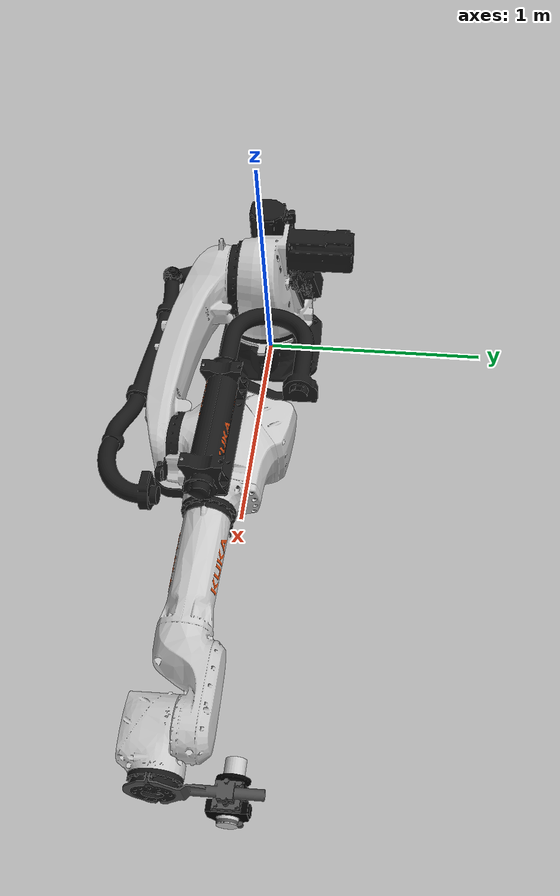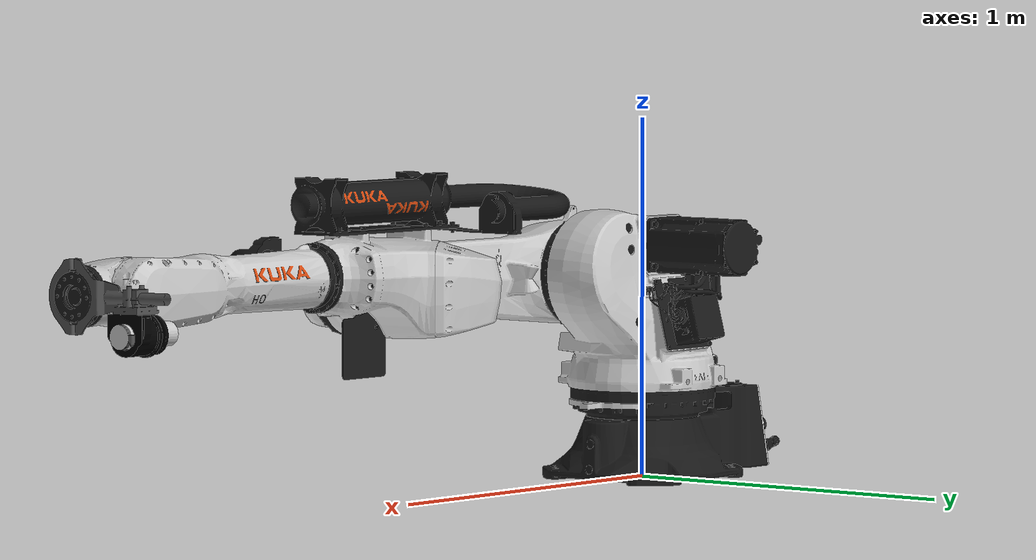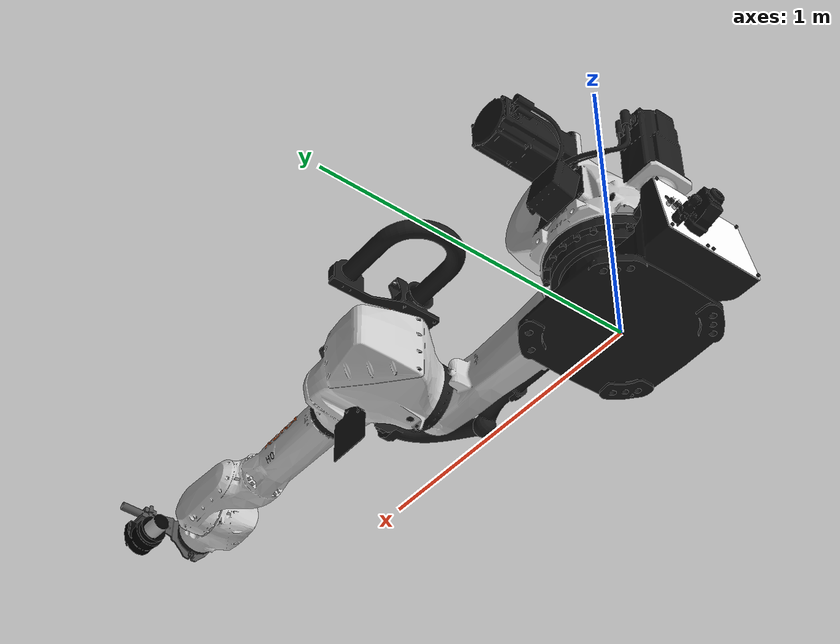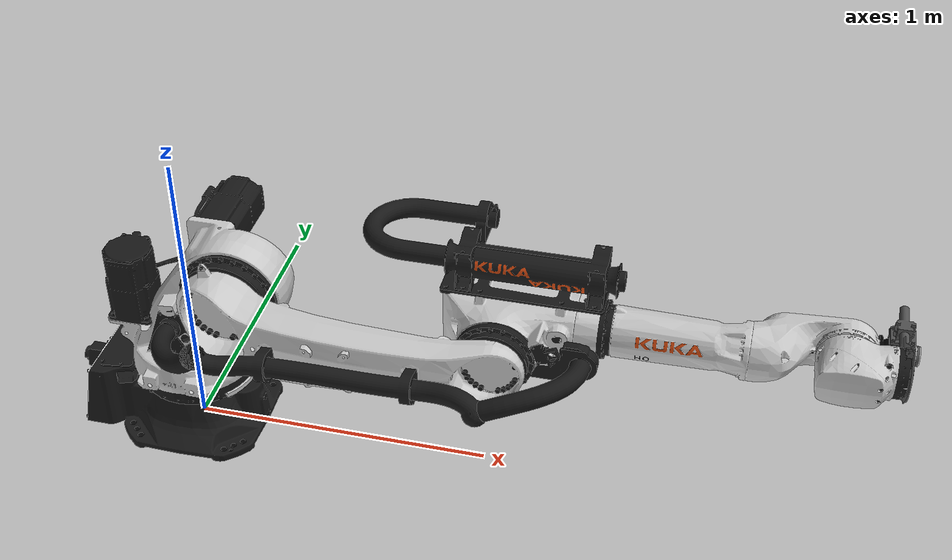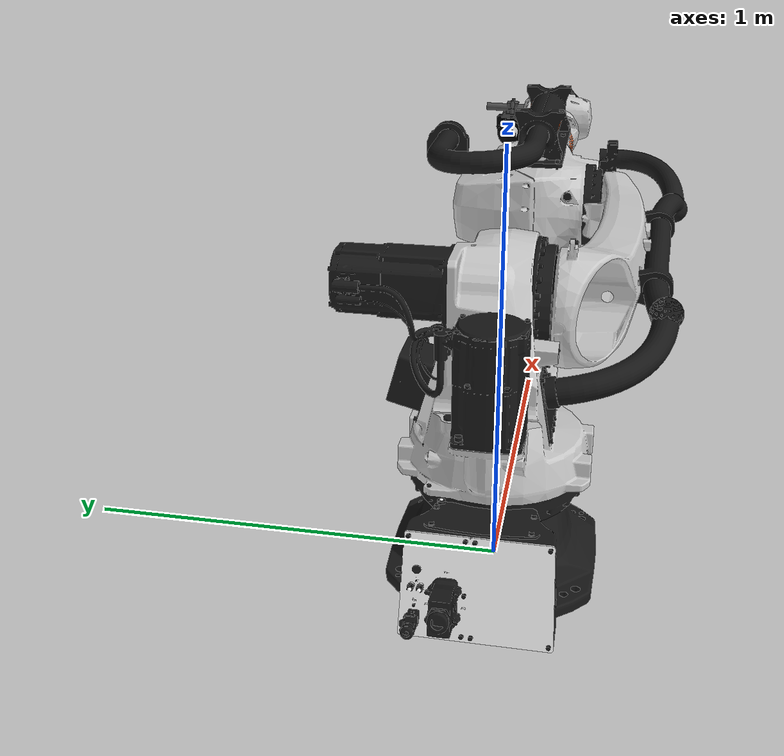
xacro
<?xml version="1.0"?>
<robot xmlns:xacro="http://www.ros.org/wiki/xacro" name="kr50_r2100">
  <!-- Import macro files  -->
  <xacro:include filename="$(find kuka_iontec_support)/urdf/kr50_r2100_macro.xacro"/>
  <xacro:include filename="$(find kuka_iontec_support)/urdf/kr_iontec_ros2_control_macro.xacro"/>
  <!-- Read additional arguments  -->
  <xacro:arg name="driver_version" default="rsi_only"/>
  <xacro:arg name="mode" default="hardware"/>
  <xacro:arg name="use_gpio" default="false"/>
  <xacro:arg name="roundtrip_time" default="0"/>
  <xacro:arg name="client_ip" default="0.0.0.0"/>
  <xacro:arg name="client_port" default="59152"/>
  <xacro:arg name="mxa_client_port" default="1337"/>
  <xacro:arg name="controller_ip" default="0.0.0.0"/>
  <xacro:arg name="verify_robot_model" default="true"/>
  <xacro:arg name="prefix" default=""/>
  <xacro:arg name="x" default="0"/>
  <xacro:arg name="y" default="0"/>
  <xacro:arg name="z" default="0"/>
  <xacro:arg name="roll" default="0"/>
  <xacro:arg name="pitch" default="0"/>
  <xacro:arg name="yaw" default="0"/>
  <xacro:arg name="gpio_config" default=""/>
  <xacro:kuka_iontec_ros2_control name="$(arg prefix)kr50_r2100" driver_version="$(arg driver_version)" client_ip="$(arg client_ip)" mxa_client_port="$(arg mxa_client_port)" controller_ip="$(arg controller_ip)" client_port="$(arg client_port)" prefix="$(arg prefix)" mode="$(arg mode)" use_gpio="$(arg use_gpio)" gpio_config="$(arg gpio_config)" roundtrip_time="$(arg roundtrip_time)" verify_robot_model="$(arg verify_robot_model)">
    <ext_axes_ros2_control_joints/>
  </xacro:kuka_iontec_ros2_control>
  <!-- world link -->
  <link name="world"/>
  <!-- robot links, joints -->
  <xacro:kuka_kr50_r2100_robot prefix="$(arg prefix)" package_name="kuka_iontec_support"/>
  <!-- default world - base_link joint -->
  <joint name="$(arg prefix)world-base_link" type="fixed">
    <parent link="world"/>
    <child link="$(arg prefix)base_link"/>
    <origin xyz="$(arg x) $(arg y) $(arg z)" rpy="$(arg roll) $(arg pitch) $(arg yaw)"/>
  </joint>
</robot>

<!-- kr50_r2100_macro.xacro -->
<robot xmlns:xacro="http://wiki.ros.org/xacro">
  <xacro:macro name="kuka_kr50_r2100_robot" params="prefix package_name link_6_es_angle:=0.0">
    <!-- links - main serial chain -->
    <link name="${prefix}base_link">
      <collision>
        <geometry>
          <mesh filename="package://${package_name}/meshes/kr50_r2100/collision/base_link.stl"/>
        </geometry>
        <origin rpy="-0.0 0.0 -0.0" xyz="0.0 0.0 0.0"/>
      </collision>
      <inertial>
        <inertia ixx="3.21771450042138" ixy="0.0" ixz="0.0" iyy="2.20944166758376" iyz="0.0" izz="3.52194780966785"/>
        <mass value="1.1102E2"/>
        <origin rpy="-0.09552224276473971 0.005165689953881887 1.5692512343174831" xyz="-0.0353407754502021 3.24880558618159E-4 0.169880117603822"/>
      </inertial>
      <visual>
        <geometry>
          <mesh filename="package://${package_name}/meshes/kr50_r2100/visual/base_link.dae"/>
        </geometry>
        <origin rpy="-0.0 0.0 -0.0" xyz="0.0 0.0 0.0"/>
      </visual>
    </link>
    <link name="${prefix}link_1">
      <collision>
        <geometry>
          <mesh filename="package://${package_name}/meshes/kr50_r2100/collision/link_1.stl"/>
        </geometry>
        <origin rpy="3.1415927 0.0 0.0" xyz="0.0 0.0 0.236000"/>
      </collision>
      <inertial>
        <inertia ixx="5.40709339054184" ixy="0.0" ixz="0.0" iyy="7.71982652844139" iyz="0.0" izz="9.08867781161129"/>
        <mass value="1.75205E2"/>
        <origin rpy="-0.7923258603339018 -0.8943966305036485 2.6984590381230245" xyz="0.0386086184755001 -0.0346095020119289 -0.237989526554607"/>
      </inertial>
      <visual>
        <geometry>
          <mesh filename="package://${package_name}/meshes/kr50_r2100/visual/link_1.dae"/>
        </geometry>
        <origin rpy="3.1415927 0.0 0.0" xyz="0.0 0.0 0.236000"/>
      </visual>
    </link>
    <link name="${prefix}link_2">
      <collision>
        <geometry>
          <mesh filename="package://${package_name}/meshes/kr50_r2100/collision/link_2.stl"/>
        </geometry>
        <origin rpy="1.5707963 0.0 1.5707963" xyz="-0.575000 -0.175000 0.054000 "/>
      </collision>
      <inertial>
        <inertia ixx="15.3115976467419" ixy="0.0" ixz="0.0" iyy="1.25648697469284" iyz="0.0" izz="15.5308363638855"/>
        <mass value="1.0886E2"/>
        <origin rpy="2.0043980356557825 -1.4175712597169723 -0.4411071139781909" xyz="0.322390685283851 0.0011177475656806899 -0.0921965092779717"/>
      </inertial>
      <visual>
        <geometry>
          <mesh filename="package://${package_name}/meshes/kr50_r2100/visual/link_2.dae"/>
        </geometry>
        <origin rpy="1.5707963 0.0 1.5707963" xyz="-0.575000 -0.175000 0.054000 "/>
      </visual>
    </link>
    <link name="${prefix}link_3">
      <collision>
        <geometry>
          <mesh filename="package://${package_name}/meshes/kr50_r2100/collision/link_3.stl"/>
        </geometry>
        <origin rpy="1.5707963 0.0 -0.0" xyz="-0.175000 1.465000 0.151500"/>
      </collision>
      <inertial>
        <inertia ixx="1.92337293034476" ixy="0.0" ixz="0.0" iyy="1.27849052849714" iyz="0.0" izz="2.39171458731211"/>
        <mass value="7.6987E1"/>
        <origin rpy="-1.4493563584878768 -1.5363130245492544 2.877566531592554" xyz="0.0313301089794381 -0.020586332757478502 0.14882084299946702"/>
      </inertial>
      <visual>
        <geometry>
          <mesh filename="package://${package_name}/meshes/kr50_r2100/visual/link_3.dae"/>
        </geometry>
        <origin rpy="1.5707963 0.0 -0.0" xyz="-0.175000 1.465000 0.151500"/>
      </visual>
    </link>
    <link name="${prefix}link_4">
      <collision>
        <geometry>
          <mesh filename="package://${package_name}/meshes/kr50_r2100/collision/link_4.stl"/>
        </geometry>
        <origin rpy="0.0 1.5707963 0" xyz="-1.515000 0 0.483050"/>
      </collision>
      <inertial>
        <inertia ixx="0.155169399999395" ixy="0.0" ixz="0.0" iyy="2.40535850557874" iyz="0.0" izz="2.40600523859326"/>
        <mass value="3.6937064569E1"/>
        <origin rpy="0.828589798090399 -1.4728909399076815 -1.576276607483943" xyz="1.89432198144002E-4 0.024470785786346698 -0.41246255028967"/>
      </inertial>
      <visual>
        <geometry>
          <mesh filename="package://${package_name}/meshes/kr50_r2100/visual/link_4.dae"/>
        </geometry>
        <origin rpy="0.0 1.5707963 0" xyz="-1.515000 0 0.483050"/>
      </visual>
    </link>
    <link name="${prefix}link_5">
      <collision>
        <geometry>
          <mesh filename="package://${package_name}/meshes/kr50_r2100/collision/link_5.stl"/>
        </geometry>
        <origin rpy="1.5707963 0.0 -0.0" xyz="-1.210000 1.515000 -0.047950"/>
      </collision>
      <inertial>
        <inertia ixx="0.104253153076611" ixy="0.0" ixz="0.0" iyy="0.080454547765652" iyz="0.0" izz="0.129775394933814"/>
        <mass value="1.6209E1"/>
        <origin rpy="-1.5546090234283156 -1.0268303292864105 -0.0223629762980488" xyz="0.0338747121969276 4.7815719661916203E-4 -0.0563914652353631"/>
      </inertial>
      <visual>
        <geometry>
          <mesh filename="package://${package_name}/meshes/kr50_r2100/visual/link_5.dae"/>
        </geometry>
        <origin rpy="1.5707963 0.0 -0.0" xyz="-1.210000 1.515000 -0.047950"/>
      </visual>
    </link>
    <link name="${prefix}link_6">
      <collision>
        <geometry>
          <cylinder radius="0.0625" length="0.036"/>
        </geometry>
        <origin xyz="0.0 0.0 0.018"/>
      </collision>
      <inertial>
        <inertia ixx="0.00543884122921238" ixy="0.0" ixz="0.0" iyy="0.00497050004638771" iyz="0.0" izz="0.00667989273554355"/>
        <mass value="3.62E0"/>
        <origin rpy="-0.2657207469665607 5.14585534055515E-4 1.571146297496868" xyz="-0.00392541436464088 5.41436464088398E-6 -0.00152140883977901"/>
      </inertial>
      <visual>
        <geometry>
          <mesh filename="package://${package_name}/meshes/kr50_r2100/visual/link_6.dae"/>
        </geometry>
        <origin rpy="-0.0 1.5707963 -0.0" xyz="-1.515000 0.0 1.359000"/>
      </visual>
    </link><link name="${prefix}link_6_es">
      <collision>
        <geometry>
          <mesh filename="package://${package_name}/meshes/kr50_r2100/collision/link_6_es.stl"/>
        </geometry>
        <origin rpy="-0.0 1.5707963 -0.0" xyz="-1.515000 0.0 1.359000"/>
      </collision>
      <inertial>
        <inertia ixx="0.00543884122921238" ixy="0.0" ixz="0.0" iyy="0.00497050004638771" iyz="0.0" izz="0.00667989273554355"/>
        <mass value="3.62E0"/>
        <origin rpy="-0.2657207469665607 5.14585534055515E-4 1.571146297496868" xyz="-0.00392541436464088 5.41436464088398E-6 -0.00152140883977901"/>
      </inertial>
      <visual>
        <geometry>
          <mesh filename="package://${package_name}/meshes/kr50_r2100/visual/link_6_es.dae"/>
        </geometry>
        <origin rpy="-0.0 1.5707963 -0.0" xyz="-1.515000 0.0 1.359000"/>
      </visual>
    </link>
    <joint name="${prefix}joint_1" type="revolute">
      <axis xyz="0.0 0.0 1.0"/>
      <child link="${prefix}link_1"/>
      <limit effort="5.528892E3" lower="-3.2288591125E0" upper="3.2288591125E0" velocity="3.14159265358979E0"/>
      <origin rpy="3.141592653589793 -0.0 0.0" xyz="0.0 0.0 0.23600000000000002"/>
      <parent link="${prefix}base_link"/>
    </joint>
    <joint name="${prefix}joint_2" type="revolute">
      <axis xyz="0.0 0.0 1.0"/>
      <child link="${prefix}link_2"/>
      <limit effort="4.63521860979619E3" lower="-3.0543261875E0" upper="1.04719755E0" velocity="2.75719614004311E0"/>
      <origin rpy="1.5707963267948966 -0.0 0.0" xyz="0.17500000000000002 0.054 -0.339"/>
      <parent link="${prefix}link_1"/>
    </joint>
    <joint name="${prefix}joint_3" type="revolute">
      <axis xyz="0.0 0.0 1.0"/>
      <child link="${prefix}link_3"/>
      <limit effort="1.78564006036566E3" lower="-2.0943951E0" upper="2.8797932625E0" velocity="2.79252680319093E0"/>
      <origin rpy="0.0 -0.0 0.0" xyz="0.89 0.0 -0.0975"/>
      <parent link="${prefix}link_2"/>
    </joint>
    <joint name="${prefix}joint_4" type="revolute">
      <axis xyz="0.0 0.0 1.0"/>
      <child link="${prefix}link_4"/>
      <limit effort="6.45625632046567E2" lower="-3.14159265E0" upper="3.14159265E0" velocity="4.01425727958696E0"/>
      <origin rpy="1.5707963267948966 -0.0 -1.5707963267948966" xyz="0.30805 -0.05 0.1515"/>
      <parent link="${prefix}link_3"/>
    </joint>
    <joint name="${prefix}joint_5" type="revolute">
      <axis xyz="0.0 0.0 1.0"/>
      <child link="${prefix}link_5"/>
      <limit effort="5.8309335940288E2" lower="-2.1816615625E0" upper="2.1816615625E0" velocity="4.01425727958696E0"/>
      <origin rpy="0.0 1.5707963267948966 1.5707963267948966" xyz="0.0 0.047950000000000007 -0.7269500000000001"/>
      <parent link="${prefix}link_4"/>
    </joint>
    <joint name="${prefix}joint_6" type="revolute">
      <axis xyz="0.0 0.0 1.0"/>
      <child link="${prefix}link_6"/>
      <limit effort="3.39155998042573E2" lower="-6.108652375E0" upper="6.108652375E0" velocity="5.58505360638185E0"/>
      <origin rpy="1.5707963267948966 -0.0 -1.5707963267948966" xyz="0.149 0.0 -0.047950000000000007"/>
      <parent link="${prefix}link_5"/>
    </joint>
    <joint name="${prefix}joint_6_es" type="fixed">
      <parent link="${prefix}link_6"/>
      <child link="${prefix}link_6_es"/>
      <origin rpy="0.0 0.0 ${-link_6_es_angle}"/>
      <limit effort="0" lower="0" upper="0" velocity="0"/>
    </joint>
    <!-- ROS-Industrial 'base' frame - equivalent of 'KUKA ROBROOT'-->
    <link name="${prefix}base"/>
    <joint name="${prefix}base_link-base" type="fixed">
      <origin xyz="0 0 0" rpy="0 0 0"/>
      <parent link="${prefix}base_link"/>
      <child link="${prefix}base"/>
    </joint>
    <!-- ROS-Industrial 'flange' frame - attachment point for EEF models -->
    <link name="${prefix}flange"/>
    <joint name="${prefix}link6-flange" type="fixed">
      <child link="${prefix}flange"/>
      <origin rpy="0.0 ${pi/2} 0.0" xyz="0.0 0.0 -0.036"/>
      <parent link="${prefix}link_6"/>
    </joint>
    <!-- ROS-Industrial 'tool0' frame - all-zeros tool frame -->
    <link name="${prefix}tool0"/>
    <joint name="${prefix}link6-tool0" type="fixed">
      <child link="${prefix}tool0"/>
      <origin rpy="0.0 ${pi} 0.0" xyz="0.0 0.0 -0.036"/>
      <parent link="${prefix}link_6"/>
    </joint>
  </xacro:macro>
</robot>
